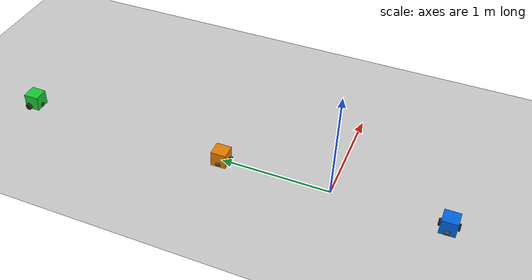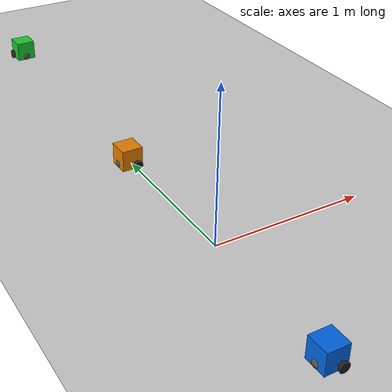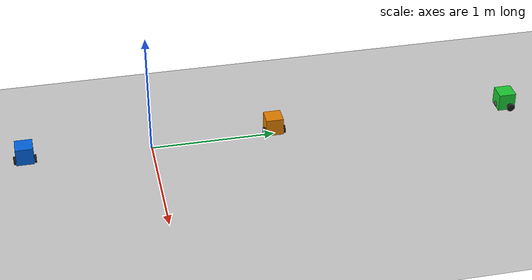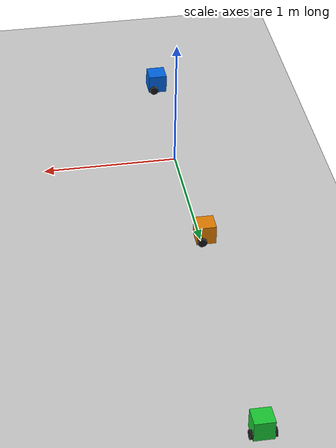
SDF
<?xml version="1.0" ?>
<!-- AUTO-GENERATED by scripts/generate_fleet.py from config/fleet.yaml. Do not edit. -->
<sdf version="1.8">
  <world name="fleet">

    <plugin filename="gz-sim-physics-system" name="gz::sim::systems::Physics"/>
    <plugin filename="gz-sim-scene-broadcaster-system" name="gz::sim::systems::SceneBroadcaster"/>
    <plugin filename="gz-sim-user-commands-system" name="gz::sim::systems::UserCommands"/>

    <light name="sun" type="directional">
      <cast_shadows>true</cast_shadows>
      <pose>0 0 10 0 0 0</pose>
      <diffuse>0.8 0.8 0.8 1</diffuse>
      <specular>0.2 0.2 0.2 1</specular>
      <direction>-0.5 0.1 -0.9</direction>
    </light>

    <model name="ground_plane">
      <static>true</static>
      <link name="link">
        <collision name="collision">
          <geometry>
            <plane><normal>0 0 1</normal><size>100 100</size></plane>
          </geometry>
          <surface>
            <friction><ode><mu>100</mu><mu2>50</mu2></ode></friction>
          </surface>
        </collision>
        <visual name="visual">
          <geometry>
            <plane><normal>0 0 1</normal><size>100 100</size></plane>
          </geometry>
          <material>
            <ambient>0.8 0.8 0.8 1</ambient>
            <diffuse>0.8 0.8 0.8 1</diffuse>
          </material>
        </visual>
      </link>
    </model>

    <model name="tb1">
      <pose>0.0 1.0 0 0 0 0.0</pose>

      <link name="base_link">
        <pose>0 0 0.010 0 0 0</pose>
        <inertial>
          <mass>8.2573504e-01</mass>
          <inertia>
            <ixx>2.2124416e-03</ixx><ixy>-1.2294101e-05</ixy><ixz>3.4938785e-05</ixz>
            <iyy>2.1193702e-03</iyy><iyz>-5.0120904e-06</iyz>
            <izz>2.0064271e-03</izz>
          </inertia>
        </inertial>
        <visual name="visual_body">
          <pose>-0.032 0 0.070 0 0 0</pose>
          <geometry><box><size>0.140 0.140 0.143</size></box></geometry>
          <material>
            <ambient>0.9 0.5 0.0 1</ambient>
            <diffuse>0.9 0.5 0.0 1</diffuse>
          </material>
        </visual>
        <collision name="collision_body">
          <pose>-0.032 0 0.070 0 0 0</pose>
          <geometry><box><size>0.140 0.140 0.143</size></box></geometry>
        </collision>
      </link>

      <link name="wheel_left_link">
        <pose>0.0 0.080 0.033 -1.5707963 0 0</pose>
        <inertial>
          <mass>2.8498940e-02</mass>
          <inertia>
            <ixx>1.1175580e-05</ixx><ixy>-4.2369783e-11</ixy><ixz>-5.9381719e-09</ixz>
            <iyy>1.1192413e-05</iyy><iyz>-1.4400107e-11</iyz>
            <izz>2.0712558e-05</izz>
          </inertia>
        </inertial>
        <visual name="visual">
          <geometry><cylinder><radius>0.033</radius><length>0.018</length></cylinder></geometry>
          <material><ambient>0.1 0.1 0.1 1</ambient><diffuse>0.1 0.1 0.1 1</diffuse></material>
        </visual>
        <collision name="collision">
          <surface><friction><ode><mu>1.0</mu><mu2>0.5</mu2></ode></friction></surface>
          <geometry><cylinder><radius>0.033</radius><length>0.018</length></cylinder></geometry>
        </collision>
      </link>

      <link name="wheel_right_link">
        <pose>0.0 -0.080 0.033 -1.5707963 0 0</pose>
        <inertial>
          <mass>2.8498940e-02</mass>
          <inertia>
            <ixx>1.1175580e-05</ixx><ixy>-4.2369783e-11</ixy><ixz>-5.9381719e-09</ixz>
            <iyy>1.1192413e-05</iyy><iyz>-1.4400107e-11</iyz>
            <izz>2.0712558e-05</izz>
          </inertia>
        </inertial>
        <visual name="visual">
          <geometry><cylinder><radius>0.033</radius><length>0.018</length></cylinder></geometry>
          <material><ambient>0.1 0.1 0.1 1</ambient><diffuse>0.1 0.1 0.1 1</diffuse></material>
        </visual>
        <collision name="collision">
          <surface><friction><ode><mu>1.0</mu><mu2>0.5</mu2></ode></friction></surface>
          <geometry><cylinder><radius>0.033</radius><length>0.018</length></cylinder></geometry>
        </collision>
      </link>

      <link name="caster_back_link">
        <pose>-0.081 0 0.033 0 0 0</pose>
        <inertial>
          <mass>0.005</mass>
          <inertia><ixx>0.001</ixx><ixy>0</ixy><ixz>0</ixz><iyy>0.001</iyy><iyz>0</iyz><izz>0.001</izz></inertia>
        </inertial>
        <visual name="visual">
          <geometry><sphere><radius>0.033</radius></sphere></geometry>
          <material><ambient>0.3 0.3 0.3 1</ambient><diffuse>0.3 0.3 0.3 1</diffuse></material>
        </visual>
        <collision name="collision">
          <surface><friction><ode><mu>0.0</mu><mu2>0.0</mu2></ode></friction></surface>
          <geometry><sphere><radius>0.033</radius></sphere></geometry>
        </collision>
      </link>

      <joint name="wheel_left_joint" type="revolute">
        <parent>base_link</parent>
        <child>wheel_left_link</child>
        <axis>
          <xyz>0 0 1</xyz>
          <limit><lower>-1.79769e+308</lower><upper>1.79769e+308</upper></limit>
          <dynamics><damping>0.01</damping><friction>0.01</friction></dynamics>
        </axis>
      </joint>

      <joint name="wheel_right_joint" type="revolute">
        <parent>base_link</parent>
        <child>wheel_right_link</child>
        <axis>
          <xyz>0 0 1</xyz>
          <limit><lower>-1.79769e+308</lower><upper>1.79769e+308</upper></limit>
          <dynamics><damping>0.01</damping><friction>0.01</friction></dynamics>
        </axis>
      </joint>

      <joint name="caster_back_joint" type="ball">
        <parent>base_link</parent>
        <child>caster_back_link</child>
      </joint>

      <plugin filename="gz-sim-diff-drive-system" name="gz::sim::systems::DiffDrive">
        <left_joint>wheel_left_joint</left_joint>
        <right_joint>wheel_right_joint</right_joint>
        <wheel_separation>0.160</wheel_separation>
        <wheel_radius>0.033</wheel_radius>
        <odom_publish_frequency>10</odom_publish_frequency>
        <topic>/tb1/cmd_vel</topic>
        <odom_topic>/tb1/odom</odom_topic>
        <tf_topic>/tf</tf_topic>
        <frame_id>tb1/odom</frame_id>
        <child_frame_id>tb1/base_footprint</child_frame_id>
      </plugin>

      <plugin filename="gz-sim-joint-state-publisher-system" name="gz::sim::systems::JointStatePublisher">
        <topic>/tb1/joint_states</topic>
      </plugin>
    </model>

    <model name="tb2">
      <pose>0.0 -1.0 0 0 0 0.0</pose>

      <link name="base_link">
        <pose>0 0 0.010 0 0 0</pose>
        <inertial>
          <mass>8.2573504e-01</mass>
          <inertia>
            <ixx>2.2124416e-03</ixx><ixy>-1.2294101e-05</ixy><ixz>3.4938785e-05</ixz>
            <iyy>2.1193702e-03</iyy><iyz>-5.0120904e-06</iyz>
            <izz>2.0064271e-03</izz>
          </inertia>
        </inertial>
        <visual name="visual_body">
          <pose>-0.032 0 0.070 0 0 0</pose>
          <geometry><box><size>0.140 0.140 0.143</size></box></geometry>
          <material>
            <ambient>0.0 0.4 0.9 1</ambient>
            <diffuse>0.0 0.4 0.9 1</diffuse>
          </material>
        </visual>
        <collision name="collision_body">
          <pose>-0.032 0 0.070 0 0 0</pose>
          <geometry><box><size>0.140 0.140 0.143</size></box></geometry>
        </collision>
      </link>

      <link name="wheel_left_link">
        <pose>0.0 0.080 0.033 -1.5707963 0 0</pose>
        <inertial>
          <mass>2.8498940e-02</mass>
          <inertia>
            <ixx>1.1175580e-05</ixx><ixy>-4.2369783e-11</ixy><ixz>-5.9381719e-09</ixz>
            <iyy>1.1192413e-05</iyy><iyz>-1.4400107e-11</iyz>
            <izz>2.0712558e-05</izz>
          </inertia>
        </inertial>
        <visual name="visual">
          <geometry><cylinder><radius>0.033</radius><length>0.018</length></cylinder></geometry>
          <material><ambient>0.1 0.1 0.1 1</ambient><diffuse>0.1 0.1 0.1 1</diffuse></material>
        </visual>
        <collision name="collision">
          <surface><friction><ode><mu>1.0</mu><mu2>0.5</mu2></ode></friction></surface>
          <geometry><cylinder><radius>0.033</radius><length>0.018</length></cylinder></geometry>
        </collision>
      </link>

      <link name="wheel_right_link">
        <pose>0.0 -0.080 0.033 -1.5707963 0 0</pose>
        <inertial>
          <mass>2.8498940e-02</mass>
          <inertia>
            <ixx>1.1175580e-05</ixx><ixy>-4.2369783e-11</ixy><ixz>-5.9381719e-09</ixz>
            <iyy>1.1192413e-05</iyy><iyz>-1.4400107e-11</iyz>
            <izz>2.0712558e-05</izz>
          </inertia>
        </inertial>
        <visual name="visual">
          <geometry><cylinder><radius>0.033</radius><length>0.018</length></cylinder></geometry>
          <material><ambient>0.1 0.1 0.1 1</ambient><diffuse>0.1 0.1 0.1 1</diffuse></material>
        </visual>
        <collision name="collision">
          <surface><friction><ode><mu>1.0</mu><mu2>0.5</mu2></ode></friction></surface>
          <geometry><cylinder><radius>0.033</radius><length>0.018</length></cylinder></geometry>
        </collision>
      </link>

      <link name="caster_back_link">
        <pose>-0.081 0 0.033 0 0 0</pose>
        <inertial>
          <mass>0.005</mass>
          <inertia><ixx>0.001</ixx><ixy>0</ixy><ixz>0</ixz><iyy>0.001</iyy><iyz>0</iyz><izz>0.001</izz></inertia>
        </inertial>
        <visual name="visual">
          <geometry><sphere><radius>0.033</radius></sphere></geometry>
          <material><ambient>0.3 0.3 0.3 1</ambient><diffuse>0.3 0.3 0.3 1</diffuse></material>
        </visual>
        <collision name="collision">
          <surface><friction><ode><mu>0.0</mu><mu2>0.0</mu2></ode></friction></surface>
          <geometry><sphere><radius>0.033</radius></sphere></geometry>
        </collision>
      </link>

      <joint name="wheel_left_joint" type="revolute">
        <parent>base_link</parent>
        <child>wheel_left_link</child>
        <axis>
          <xyz>0 0 1</xyz>
          <limit><lower>-1.79769e+308</lower><upper>1.79769e+308</upper></limit>
          <dynamics><damping>0.01</damping><friction>0.01</friction></dynamics>
        </axis>
      </joint>

      <joint name="wheel_right_joint" type="revolute">
        <parent>base_link</parent>
        <child>wheel_right_link</child>
        <axis>
          <xyz>0 0 1</xyz>
          <limit><lower>-1.79769e+308</lower><upper>1.79769e+308</upper></limit>
          <dynamics><damping>0.01</damping><friction>0.01</friction></dynamics>
        </axis>
      </joint>

      <joint name="caster_back_joint" type="ball">
        <parent>base_link</parent>
        <child>caster_back_link</child>
      </joint>

      <plugin filename="gz-sim-diff-drive-system" name="gz::sim::systems::DiffDrive">
        <left_joint>wheel_left_joint</left_joint>
        <right_joint>wheel_right_joint</right_joint>
        <wheel_separation>0.160</wheel_separation>
        <wheel_radius>0.033</wheel_radius>
        <odom_publish_frequency>10</odom_publish_frequency>
        <topic>/tb2/cmd_vel</topic>
        <odom_topic>/tb2/odom</odom_topic>
        <tf_topic>/tf</tf_topic>
        <frame_id>tb2/odom</frame_id>
        <child_frame_id>tb2/base_footprint</child_frame_id>
      </plugin>

      <plugin filename="gz-sim-joint-state-publisher-system" name="gz::sim::systems::JointStatePublisher">
        <topic>/tb2/joint_states</topic>
      </plugin>
    </model>

    <model name="tb3">
      <pose>0.0 3.0 0 0 0 1.57</pose>

      <link name="base_link">
        <pose>0 0 0.010 0 0 0</pose>
        <inertial>
          <mass>8.2573504e-01</mass>
          <inertia>
            <ixx>2.2124416e-03</ixx><ixy>-1.2294101e-05</ixy><ixz>3.4938785e-05</ixz>
            <iyy>2.1193702e-03</iyy><iyz>-5.0120904e-06</iyz>
            <izz>2.0064271e-03</izz>
          </inertia>
        </inertial>
        <visual name="visual_body">
          <pose>-0.032 0 0.070 0 0 0</pose>
          <geometry><box><size>0.140 0.140 0.143</size></box></geometry>
          <material>
            <ambient>0.1 0.8 0.2 1</ambient>
            <diffuse>0.1 0.8 0.2 1</diffuse>
          </material>
        </visual>
        <collision name="collision_body">
          <pose>-0.032 0 0.070 0 0 0</pose>
          <geometry><box><size>0.140 0.140 0.143</size></box></geometry>
        </collision>
      </link>

      <link name="wheel_left_link">
        <pose>0.0 0.080 0.033 -1.5707963 0 0</pose>
        <inertial>
          <mass>2.8498940e-02</mass>
          <inertia>
            <ixx>1.1175580e-05</ixx><ixy>-4.2369783e-11</ixy><ixz>-5.9381719e-09</ixz>
            <iyy>1.1192413e-05</iyy><iyz>-1.4400107e-11</iyz>
            <izz>2.0712558e-05</izz>
          </inertia>
        </inertial>
        <visual name="visual">
          <geometry><cylinder><radius>0.033</radius><length>0.018</length></cylinder></geometry>
          <material><ambient>0.1 0.1 0.1 1</ambient><diffuse>0.1 0.1 0.1 1</diffuse></material>
        </visual>
        <collision name="collision">
          <surface><friction><ode><mu>1.0</mu><mu2>0.5</mu2></ode></friction></surface>
          <geometry><cylinder><radius>0.033</radius><length>0.018</length></cylinder></geometry>
        </collision>
      </link>

      <link name="wheel_right_link">
        <pose>0.0 -0.080 0.033 -1.5707963 0 0</pose>
        <inertial>
          <mass>2.8498940e-02</mass>
          <inertia>
            <ixx>1.1175580e-05</ixx><ixy>-4.2369783e-11</ixy><ixz>-5.9381719e-09</ixz>
            <iyy>1.1192413e-05</iyy><iyz>-1.4400107e-11</iyz>
            <izz>2.0712558e-05</izz>
          </inertia>
        </inertial>
        <visual name="visual">
          <geometry><cylinder><radius>0.033</radius><length>0.018</length></cylinder></geometry>
          <material><ambient>0.1 0.1 0.1 1</ambient><diffuse>0.1 0.1 0.1 1</diffuse></material>
        </visual>
        <collision name="collision">
          <surface><friction><ode><mu>1.0</mu><mu2>0.5</mu2></ode></friction></surface>
          <geometry><cylinder><radius>0.033</radius><length>0.018</length></cylinder></geometry>
        </collision>
      </link>

      <link name="caster_back_link">
        <pose>-0.081 0 0.033 0 0 0</pose>
        <inertial>
          <mass>0.005</mass>
          <inertia><ixx>0.001</ixx><ixy>0</ixy><ixz>0</ixz><iyy>0.001</iyy><iyz>0</iyz><izz>0.001</izz></inertia>
        </inertial>
        <visual name="visual">
          <geometry><sphere><radius>0.033</radius></sphere></geometry>
          <material><ambient>0.3 0.3 0.3 1</ambient><diffuse>0.3 0.3 0.3 1</diffuse></material>
        </visual>
        <collision name="collision">
          <surface><friction><ode><mu>0.0</mu><mu2>0.0</mu2></ode></friction></surface>
          <geometry><sphere><radius>0.033</radius></sphere></geometry>
        </collision>
      </link>

      <joint name="wheel_left_joint" type="revolute">
        <parent>base_link</parent>
        <child>wheel_left_link</child>
        <axis>
          <xyz>0 0 1</xyz>
          <limit><lower>-1.79769e+308</lower><upper>1.79769e+308</upper></limit>
          <dynamics><damping>0.01</damping><friction>0.01</friction></dynamics>
        </axis>
      </joint>

      <joint name="wheel_right_joint" type="revolute">
        <parent>base_link</parent>
        <child>wheel_right_link</child>
        <axis>
          <xyz>0 0 1</xyz>
          <limit><lower>-1.79769e+308</lower><upper>1.79769e+308</upper></limit>
          <dynamics><damping>0.01</damping><friction>0.01</friction></dynamics>
        </axis>
      </joint>

      <joint name="caster_back_joint" type="ball">
        <parent>base_link</parent>
        <child>caster_back_link</child>
      </joint>

      <plugin filename="gz-sim-diff-drive-system" name="gz::sim::systems::DiffDrive">
        <left_joint>wheel_left_joint</left_joint>
        <right_joint>wheel_right_joint</right_joint>
        <wheel_separation>0.160</wheel_separation>
        <wheel_radius>0.033</wheel_radius>
        <odom_publish_frequency>10</odom_publish_frequency>
        <topic>/tb3/cmd_vel</topic>
        <odom_topic>/tb3/odom</odom_topic>
        <tf_topic>/tf</tf_topic>
        <frame_id>tb3/odom</frame_id>
        <child_frame_id>tb3/base_footprint</child_frame_id>
      </plugin>

      <plugin filename="gz-sim-joint-state-publisher-system" name="gz::sim::systems::JointStatePublisher">
        <topic>/tb3/joint_states</topic>
      </plugin>
    </model>

  </world>
</sdf>
